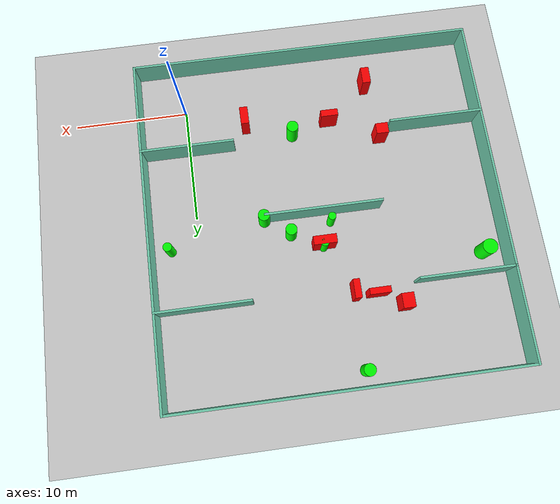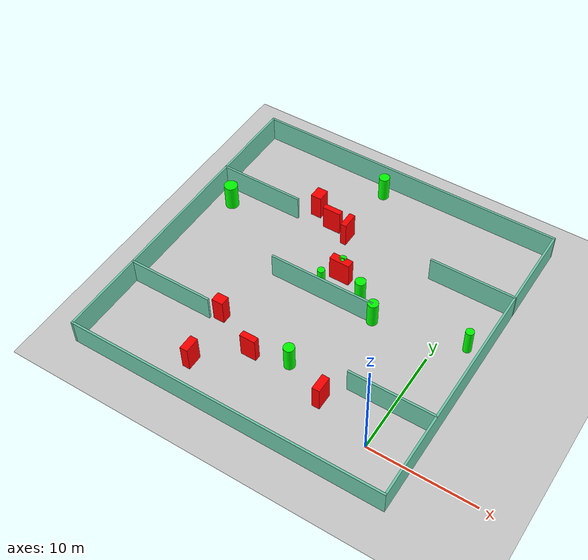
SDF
<sdf version="1.7">
 <world name="default">
  <light name="sun" type="directional">
   <pose>0 0 10 0 -0 0</pose>
   <diffuse>0.8 0.8 0.8 1</diffuse>
   <specular>0.2 0.2 0.2 1</specular>
   <attenuation>
    <range>1000</range>
    <constant>0.9</constant>
    <linear>0.01</linear>
    <quadratic>0.001</quadratic>
   </attenuation>
   <direction>-0.5 0.1 -0.9</direction>
   <spot><inner_angle>0</inner_angle><outer_angle>0</outer_angle><falloff>0</falloff></spot>
  </light>
  <model name="ground_plane">
   <static>1</static>
   <link name="link">
    <collision name="collision">
     <geometry><plane><normal>0 0 1</normal><size>100 100</size></plane></geometry>
     <surface>
      <contact><collide_bitmask>65535</collide_bitmask></contact>
      <friction><ode><mu>100</mu><mu2>50</mu2></ode></friction>
     </surface>
    </collision>
    <visual name="visual">
     <cast_shadows>0</cast_shadows>
     <geometry><plane><normal>0 0 1</normal><size>100 100</size></plane></geometry>
     <material>
      <script><uri>file://media/materials/scripts/gazebo.material</uri><name>Gazebo/Grey</name></script>
     </material>
    </visual>
   </link>
  </model>
  <gravity>0 0 -9.8</gravity>
  <magnetic_field>6e-06 2.3e-05 -4.2e-05</magnetic_field>
  <atmosphere type="adiabatic"/>
  <physics type="ode">
   <max_step_size>0.001</max_step_size>
   <real_time_factor>1</real_time_factor>
   <real_time_update_rate>1000</real_time_update_rate>
  </physics>
  <scene><ambient>0.4 0.4 0.4 1</ambient><background>0.7 0.7 0.7 1</background><shadows>1</shadows></scene>
  <spherical_coordinates>
   <surface_model>EARTH_WGS84</surface_model>
   <latitude_deg>0</latitude_deg>
   <longitude_deg>0</longitude_deg>
   <elevation>0</elevation>
   <heading_deg>0</heading_deg>
  </spherical_coordinates>
  <model name="my_base_walls">
   <link name="Wall_10">
    <collision name="Wall_10_Collision">
     <geometry><box><size>8.2 0.2 2.5</size></box></geometry>
     <pose>0 0 1.25 0 -0 0</pose>
    </collision>
    <visual name="Wall_10_Visual">
     <pose>0 0 1.25 0 -0 0</pose>
     <geometry><box><size>8.2 0.2 2.5</size></box></geometry>
     <material>
      <script><uri>file://media/materials/scripts/gazebo.material</uri><name>Gazebo/Grey</name></script>
      <ambient>0.435294 0.796078 0.67451 1</ambient>
     </material>
     <meta><layer>0</layer></meta>
    </visual>
    <pose>-11 -7 0 0 -0 0</pose>
   </link>
   <link name="Wall_12">
    <collision name="Wall_12_Collision">
     <geometry><box><size>8.2 0.2 2.5</size></box></geometry>
     <pose>0 0 1.25 0 -0 0</pose>
    </collision>
    <visual name="Wall_12_Visual">
     <pose>0 0 1.25 0 -0 0</pose>
     <geometry><box><size>8.2 0.2 2.5</size></box></geometry>
     <material>
      <script><uri>file://media/materials/scripts/gazebo.material</uri><name>Gazebo/Grey</name></script>
      <ambient>0.435294 0.796078 0.67451 1</ambient>
     </material>
     <meta><layer>0</layer></meta>
    </visual>
    <pose>-11 7 0 0 -0 0</pose>
   </link>
   <link name="Wall_14">
    <collision name="Wall_14_Collision">
     <geometry><box><size>8.2 0.2 2.5</size></box></geometry>
     <pose>0 0 1.25 0 -0 0</pose>
    </collision>
    <visual name="Wall_14_Visual">
     <pose>0 0 1.25 0 -0 0</pose>
     <geometry><box><size>8.2 0.2 2.5</size></box></geometry>
     <material>
      <script><uri>file://media/materials/scripts/gazebo.material</uri><name>Gazebo/Grey</name></script>
      <ambient>0.435294 0.796078 0.67451 1</ambient>
     </material>
     <meta><layer>0</layer></meta>
    </visual>
    <pose>11 7 0 0 -0 3.14159</pose>
   </link>
   <link name="Wall_16">
    <collision name="Wall_16_Collision">
     <geometry><box><size>10.2 0.2 2.5</size></box></geometry>
     <pose>0 0 1.25 0 -0 0</pose>
    </collision>
    <visual name="Wall_16_Visual">
     <pose>0 0 1.25 0 -0 0</pose>
     <geometry><box><size>10.2 0.2 2.5</size></box></geometry>
     <material>
      <script><uri>file://media/materials/scripts/gazebo.material</uri><name>Gazebo/Grey</name></script>
      <ambient>0.435294 0.796078 0.67451 1</ambient>
     </material>
     <meta><layer>0</layer></meta>
    </visual>
    <pose>0 0 0 0 -0 3.14159</pose>
   </link>
   <link name="Wall_2">
    <collision name="Wall_2_Collision">
     <geometry><box><size>30.2 0.2 2.5</size></box></geometry>
     <pose>0 0 1.25 0 -0 0</pose>
    </collision>
    <visual name="Wall_2_Visual">
     <pose>0 0 1.25 0 -0 0</pose>
     <geometry><box><size>30.2 0.2 2.5</size></box></geometry>
     <material>
      <script><uri>file://media/materials/scripts/gazebo.material</uri><name>Gazebo/Grey</name></script>
      <ambient>0.435294 0.796078 0.67451 1</ambient>
     </material>
     <meta><layer>0</layer></meta>
    </visual>
    <pose>0 -15 0 0 -0 3.14159</pose>
   </link>
   <link name="Wall_3">
    <collision name="Wall_3_Collision">
     <geometry><box><size>30.2 0.2 2.5</size></box></geometry>
     <pose>0 0 1.25 0 -0 0</pose>
    </collision>
    <visual name="Wall_3_Visual">
     <pose>0 0 1.25 0 -0 0</pose>
     <geometry><box><size>30.2 0.2 2.5</size></box></geometry>
     <material>
      <script><uri>file://media/materials/scripts/gazebo.material</uri><name>Gazebo/Grey</name></script>
      <ambient>0.435294 0.796078 0.67451 1</ambient>
     </material>
     <meta><layer>0</layer></meta>
    </visual>
    <pose>-15 0 0 0 -0 1.5708</pose>
   </link>
   <link name="Wall_4">
    <collision name="Wall_4_Collision">
     <geometry><box><size>30.2 0.2 2.5</size></box></geometry>
     <pose>0 0 1.25 0 -0 0</pose>
    </collision>
    <visual name="Wall_4_Visual">
     <pose>0 0 1.25 0 -0 0</pose>
     <geometry><box><size>30.2 0.2 2.5</size></box></geometry>
     <material>
      <script><uri>file://media/materials/scripts/gazebo.material</uri><name>Gazebo/Grey</name></script>
      <ambient>0.435294 0.796078 0.67451 1</ambient>
     </material>
     <meta><layer>0</layer></meta>
    </visual>
    <pose>0 15 0 0 -0 0</pose>
   </link>
   <link name="Wall_6">
    <collision name="Wall_6_Collision">
     <geometry><box><size>30.2 0.2 2.5</size></box></geometry>
     <pose>0 0 1.25 0 -0 0</pose>
    </collision>
    <visual name="Wall_6_Visual">
     <pose>0 0 1.25 0 -0 0</pose>
     <geometry><box><size>30.2 0.2 2.5</size></box></geometry>
     <material>
      <script><uri>file://media/materials/scripts/gazebo.material</uri><name>Gazebo/Grey</name></script>
      <ambient>0.435294 0.796078 0.67451 1</ambient>
     </material>
     <meta><layer>0</layer></meta>
    </visual>
    <pose>15 0 0 0 -0 1.5708</pose>
   </link>
   <link name="Wall_8">
    <collision name="Wall_8_Collision">
     <geometry><box><size>8.2 0.2 2.5</size></box></geometry>
     <pose>0 0 1.25 0 -0 0</pose>
    </collision>
    <visual name="Wall_8_Visual">
     <pose>0 0 1.25 0 -0 0</pose>
     <geometry><box><size>8.2 0.2 2.5</size></box></geometry>
     <material>
      <script><uri>file://media/materials/scripts/gazebo.material</uri><name>Gazebo/Grey</name></script>
      <ambient>0.435294 0.796078 0.67451 1</ambient>
     </material>
     <meta><layer>0</layer></meta>
    </visual>
    <pose>11 -7 0 0 -0 3.14159</pose>
   </link>
   <static>1</static>
   <pose>-11 11 0 0 -0 0</pose>
  </model>
  <model name="cylinder1">
   <static>1</static>
   <link name="link">
    <inertial>
     <mass>1</mass>
     <inertia><ixx>0.5</ixx><ixy>0</ixy><ixz>0</ixz><iyy>0.5</iyy><iyz>0</iyz><izz>1</izz></inertia>
    </inertial>
    <collision name="collision">
     <geometry><cylinder><radius>0.6321746932260428</radius><length>2.5</length></cylinder></geometry>
    </collision>
    <visual name="visual">
     <geometry><cylinder><radius>0.6321746932260428</radius><length>2.5</length></cylinder></geometry>
     <material>
      <ambient>0 1 0 1</ambient>
      <diffuse>0 1 0 1</diffuse>
      <specular>0.1 0.1 0.1 1</specular>
      <emissive>0 0 0 0</emissive>
     </material>
    </visual>
   </link>
   <pose>-24.193282283511763 16.168502787369608 1.25 0 0 0</pose>
  </model>
  <model name="cylinder2">
   <static>1</static>
   <link name="link">
    <inertial>
     <mass>1</mass>
     <inertia><ixx>0.5</ixx><ixy>0</ixy><ixz>0</ixz><iyy>0.5</iyy><iyz>0</iyz><izz>1</izz></inertia>
    </inertial>
    <collision name="collision">
     <geometry><cylinder><radius>0.4884666061974415</radius><length>2.5</length></cylinder></geometry>
    </collision>
    <visual name="visual">
     <geometry><cylinder><radius>0.4884666061974415</radius><length>2.5</length></cylinder></geometry>
     <material>
      <ambient>0 1 0 1</ambient>
      <diffuse>0 1 0 1</diffuse>
      <specular>0.1 0.1 0.1 1</specular>
      <emissive>0 0 0 0</emissive>
     </material>
    </visual>
   </link>
   <pose>-8.011221768735577 12.570857656146563 1.25 0 0 0</pose>
  </model>
  <model name="cylinder3">
   <static>1</static>
   <link name="link">
    <inertial>
     <mass>1</mass>
     <inertia><ixx>0.5</ixx><ixy>0</ixy><ixz>0</ixz><iyy>0.5</iyy><iyz>0</iyz><izz>1</izz></inertia>
    </inertial>
    <collision name="collision">
     <geometry><cylinder><radius>0.5027500447244859</radius><length>2.5</length></cylinder></geometry>
    </collision>
    <visual name="visual">
     <geometry><cylinder><radius>0.5027500447244859</radius><length>2.5</length></cylinder></geometry>
     <material>
      <ambient>0 1 0 1</ambient>
      <diffuse>0 1 0 1</diffuse>
      <specular>0.1 0.1 0.1 1</specular>
      <emissive>0 0 0 0</emissive>
     </material>
    </visual>
   </link>
   <pose>-12.62107399164084 24.67801784230635 1.25 0 0 0</pose>
  </model>
  <model name="cylinder4">
   <static>1</static>
   <link name="link">
    <inertial>
     <mass>1</mass>
     <inertia><ixx>0.5</ixx><ixy>0</ixy><ixz>0</ixz><iyy>0.5</iyy><iyz>0</iyz><izz>1</izz></inertia>
    </inertial>
    <collision name="collision">
     <geometry><cylinder><radius>0.49503899623913267</radius><length>2.5</length></cylinder></geometry>
    </collision>
    <visual name="visual">
     <geometry><cylinder><radius>0.49503899623913267</radius><length>2.5</length></cylinder></geometry>
     <material>
      <ambient>0 1 0 1</ambient>
      <diffuse>0 1 0 1</diffuse>
      <specular>0.1 0.1 0.1 1</specular>
      <emissive>0 0 0 0</emissive>
     </material>
    </visual>
   </link>
   <pose>-5.876702710679382 11.048228405300145 1.25 0 0 0</pose>
  </model>
  <model name="cylinder5">
   <static>1</static>
   <link name="link">
    <inertial>
     <mass>1</mass>
     <inertia><ixx>0.5</ixx><ixy>0</ixy><ixz>0</ixz><iyy>0.5</iyy><iyz>0</iyz><izz>1</izz></inertia>
    </inertial>
    <collision name="collision">
     <geometry><cylinder><radius>0.3788054899117588</radius><length>2.5</length></cylinder></geometry>
    </collision>
    <visual name="visual">
     <geometry><cylinder><radius>0.3788054899117588</radius><length>2.5</length></cylinder></geometry>
     <material>
      <ambient>0 1 0 1</ambient>
      <diffuse>0 1 0 1</diffuse>
      <specular>0.1 0.1 0.1 1</specular>
      <emissive>0 0 0 0</emissive>
     </material>
    </visual>
   </link>
   <pose>2.414869140711545 12.724114595365409 1.25 0 0 0</pose>
  </model>
  <model name="cylinder6">
   <static>1</static>
   <link name="link">
    <inertial>
     <mass>1</mass>
     <inertia><ixx>0.5</ixx><ixy>0</ixy><ixz>0</ixz><iyy>0.5</iyy><iyz>0</iyz><izz>1</izz></inertia>
    </inertial>
    <collision name="collision">
     <geometry><cylinder><radius>0.3331882969759177</radius><length>2.5</length></cylinder></geometry>
    </collision>
    <visual name="visual">
     <geometry><cylinder><radius>0.3331882969759177</radius><length>2.5</length></cylinder></geometry>
     <material>
      <ambient>0 1 0 1</ambient>
      <diffuse>0 1 0 1</diffuse>
      <specular>0.1 0.1 0.1 1</specular>
      <emissive>0 0 0 0</emissive>
     </material>
    </visual>
   </link>
   <pose>-11.577780747482898 11.877984838480838 1.25 0 0 0</pose>
  </model>
  <model name="cylinder7">
   <static>1</static>
   <link name="link">
    <inertial>
     <mass>1</mass>
     <inertia><ixx>0.5</ixx><ixy>0</ixy><ixz>0</ixz><iyy>0.5</iyy><iyz>0</iyz><izz>1</izz></inertia>
    </inertial>
    <collision name="collision">
     <geometry><cylinder><radius>0.49966273147815854</radius><length>2.5</length></cylinder></geometry>
    </collision>
    <visual name="visual">
     <geometry><cylinder><radius>0.49966273147815854</radius><length>2.5</length></cylinder></geometry>
     <material>
      <ambient>0 1 0 1</ambient>
      <diffuse>0 1 0 1</diffuse>
      <specular>0.1 0.1 0.1 1</specular>
      <emissive>0 0 0 0</emissive>
     </material>
    </visual>
   </link>
   <pose>-9.356215905015615 3.4210849538748676 1.25 0 0 0</pose>
  </model>
  <model name="cylinder8">
   <static>1</static>
   <link name="link">
    <inertial>
     <mass>1</mass>
     <inertia><ixx>0.5</ixx><ixy>0</ixy><ixz>0</ixz><iyy>0.5</iyy><iyz>0</iyz><izz>1</izz></inertia>
    </inertial>
    <collision name="collision">
     <geometry><cylinder><radius>0.3385040184158777</radius><length>2.5</length></cylinder></geometry>
    </collision>
    <visual name="visual">
     <geometry><cylinder><radius>0.3385040184158777</radius><length>2.5</length></cylinder></geometry>
     <material>
      <ambient>0 1 0 1</ambient>
      <diffuse>0 1 0 1</diffuse>
      <specular>0.1 0.1 0.1 1</specular>
      <emissive>0 0 0 0</emissive>
     </material>
    </visual>
   </link>
   <pose>-10.660517478701058 14.022205082870084 1.25 0 0 0</pose>
  </model>
  <model name="box1">
   <static>1</static>
   <link name="link">
    <inertial>
     <mass>1</mass>
     <inertia><ixx>0.083</ixx><ixy>0</ixy><ixz>0</ixz><iyy>0.083</iyy><iyz>0</iyz><izz>0.083</izz></inertia>
    </inertial>
    <collision name="collision">
     <geometry><box><size>1.4998302350885555 0.5799895309629612 2.5</size></box></geometry>
    </collision>
    <visual name="visual">
     <geometry><box><size>1.4998302350885555 0.5799895309629612 2.5</size></box></geometry>
     <material>
      <ambient>1 0 0 1</ambient>
      <diffuse>1 0 0 1</diffuse>
      <specular>0.1 0.1 0.1 1</specular>
      <emissive>0 0 0 0</emissive>
     </material>
    </visual>
    <sensor name="my_contact" type="contact">
     <contact><collision>box_collision</collision><topic>__default_topic__</topic></contact>
    </sensor>
   </link>
   <pose>-12.73500633848052 2.568825974160305 1.25 0 0 0</pose>
  </model>
  <model name="box2">
   <static>1</static>
   <link name="link">
    <inertial>
     <mass>1</mass>
     <inertia><ixx>0.083</ixx><ixy>0</ixy><ixz>0</ixz><iyy>0.083</iyy><iyz>0</iyz><izz>0.083</izz></inertia>
    </inertial>
    <collision name="collision">
     <geometry><box><size>0.5672203027998381 1.5805131695845098 2.5</size></box></geometry>
    </collision>
    <visual name="visual">
     <geometry><box><size>0.5672203027998381 1.5805131695845098 2.5</size></box></geometry>
     <material>
      <ambient>1 0 0 1</ambient>
      <diffuse>1 0 0 1</diffuse>
      <specular>0.1 0.1 0.1 1</specular>
      <emissive>0 0 0 0</emissive>
     </material>
    </visual>
    <sensor name="my_contact" type="contact">
     <contact><collision>box_collision</collision><topic>__default_topic__</topic></contact>
    </sensor>
   </link>
   <pose>-12.690330164371234 18.17389437239356 1.25 0 0 0</pose>
  </model>
  <model name="box3">
   <static>1</static>
   <link name="link">
    <inertial>
     <mass>1</mass>
     <inertia><ixx>0.083</ixx><ixy>0</ixy><ixz>0</ixz><iyy>0.083</iyy><iyz>0</iyz><izz>0.083</izz></inertia>
    </inertial>
    <collision name="collision">
     <geometry><box><size>1.7793330113352341 0.527961323087212 2.5</size></box></geometry>
    </collision>
    <visual name="visual">
     <geometry><box><size>1.7793330113352341 0.527961323087212 2.5</size></box></geometry>
     <material>
      <ambient>1 0 0 1</ambient>
      <diffuse>1 0 0 1</diffuse>
      <specular>0.1 0.1 0.1 1</specular>
      <emissive>0 0 0 0</emissive>
     </material>
    </visual>
    <sensor name="my_contact" type="contact">
     <contact><collision>box_collision</collision><topic>__default_topic__</topic></contact>
    </sensor>
   </link>
   <pose>-14.52701709801288 18.56930596666936 1.25 0 0 0</pose>
  </model>
  <model name="box4">
   <static>1</static>
   <link name="link">
    <inertial>
     <mass>1</mass>
     <inertia><ixx>0.083</ixx><ixy>0</ixy><ixz>0</ixz><iyy>0.083</iyy><iyz>0</iyz><izz>0.083</izz></inertia>
    </inertial>
    <collision name="collision">
     <geometry><box><size>1.0809878448563097 0.9216171231279923 2.5</size></box></geometry>
    </collision>
    <visual name="visual">
     <geometry><box><size>1.0809878448563097 0.9216171231279923 2.5</size></box></geometry>
     <material>
      <ambient>1 0 0 1</ambient>
      <diffuse>1 0 0 1</diffuse>
      <specular>0.1 0.1 0.1 1</specular>
      <emissive>0 0 0 0</emissive>
     </material>
    </visual>
    <sensor name="my_contact" type="contact">
     <contact><collision>box_collision</collision><topic>__default_topic__</topic></contact>
    </sensor>
   </link>
   <pose>-17.100323088353782 4.598292204759419 1.25 0 0 0</pose>
  </model>
  <model name="box5">
   <static>1</static>
   <link name="link">
    <inertial>
     <mass>1</mass>
     <inertia><ixx>0.083</ixx><ixy>0</ixy><ixz>0</ixz><iyy>0.083</iyy><iyz>0</iyz><izz>0.083</izz></inertia>
    </inertial>
    <collision name="collision">
     <geometry><box><size>0.7283820177401713 1.4698009872517774 2.5</size></box></geometry>
    </collision>
    <visual name="visual">
     <geometry><box><size>0.7283820177401713 1.4698009872517774 2.5</size></box></geometry>
     <material>
      <ambient>1 0 0 1</ambient>
      <diffuse>1 0 0 1</diffuse>
      <specular>0.1 0.1 0.1 1</specular>
      <emissive>0 0 0 0</emissive>
     </material>
    </visual>
    <sensor name="my_contact" type="contact">
     <contact><collision>box_collision</collision><topic>__default_topic__</topic></contact>
    </sensor>
   </link>
   <pose>-16.501564122193756 -0.6131442661846904 1.25 0 0 0</pose>
  </model>
  <model name="box6">
   <static>1</static>
   <link name="link">
    <inertial>
     <mass>1</mass>
     <inertia><ixx>0.083</ixx><ixy>0</ixy><ixz>0</ixz><iyy>0.083</iyy><iyz>0</iyz><izz>0.083</izz></inertia>
    </inertial>
    <collision name="collision">
     <geometry><box><size>0.7112874901880966 1.555368834778108 2.5</size></box></geometry>
    </collision>
    <visual name="visual">
     <geometry><box><size>0.7112874901880966 1.555368834778108 2.5</size></box></geometry>
     <material>
      <ambient>1 0 0 1</ambient>
      <diffuse>1 0 0 1</diffuse>
      <specular>0.1 0.1 0.1 1</specular>
      <emissive>0 0 0 0</emissive>
     </material>
    </visual>
    <sensor name="my_contact" type="contact">
     <contact><collision>box_collision</collision><topic>__default_topic__</topic></contact>
    </sensor>
   </link>
   <pose>-5.279882660700803 1.8220416095354555 1.25 0 0 0</pose>
  </model>
  <model name="box7">
   <static>1</static>
   <link name="link">
    <inertial>
     <mass>1</mass>
     <inertia><ixx>0.083</ixx><ixy>0</ixy><ixz>0</ixz><iyy>0.083</iyy><iyz>0</iyz><izz>0.083</izz></inertia>
    </inertial>
    <collision name="collision">
     <geometry><box><size>1.0315507070037517 1.2260633593052814 2.5</size></box></geometry>
    </collision>
    <visual name="visual">
     <geometry><box><size>1.0315507070037517 1.2260633593052814 2.5</size></box></geometry>
     <material>
      <ambient>1 0 0 1</ambient>
      <diffuse>1 0 0 1</diffuse>
      <specular>0.1 0.1 0.1 1</specular>
      <emissive>0 0 0 0</emissive>
     </material>
    </visual>
    <sensor name="my_contact" type="contact">
     <contact><collision>box_collision</collision><topic>__default_topic__</topic></contact>
    </sensor>
   </link>
   <pose>-16.65935714153484 19.666871047259583 1.25 0 0 0</pose>
  </model>
  <model name="box8">
   <static>1</static>
   <link name="link">
    <inertial>
     <mass>1</mass>
     <inertia><ixx>0.083</ixx><ixy>0</ixy><ixz>0</ixz><iyy>0.083</iyy><iyz>0</iyz><izz>0.083</izz></inertia>
    </inertial>
    <collision name="collision">
     <geometry><box><size>1.9800924321599012 0.7416100306202881 2.5</size></box></geometry>
    </collision>
    <visual name="visual">
     <geometry><box><size>1.9800924321599012 0.7416100306202881 2.5</size></box></geometry>
     <material>
      <ambient>1 0 0 1</ambient>
      <diffuse>1 0 0 1</diffuse>
      <specular>0.1 0.1 0.1 1</specular>
      <emissive>0 0 0 0</emissive>
     </material>
    </visual>
    <sensor name="my_contact" type="contact">
     <contact><collision>box_collision</collision><topic>__default_topic__</topic></contact>
    </sensor>
   </link>
   <pose>-10.690954356693819 13.780493757310111 1.25 0 0 0</pose>
  </model>
 </world>
</sdf>
